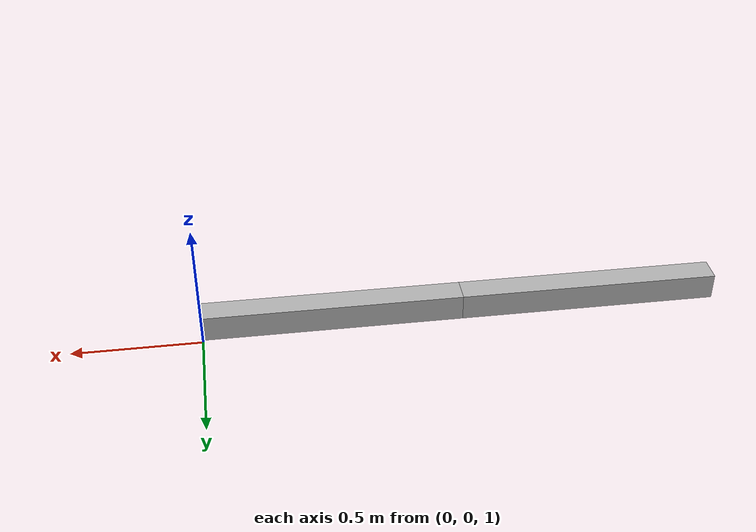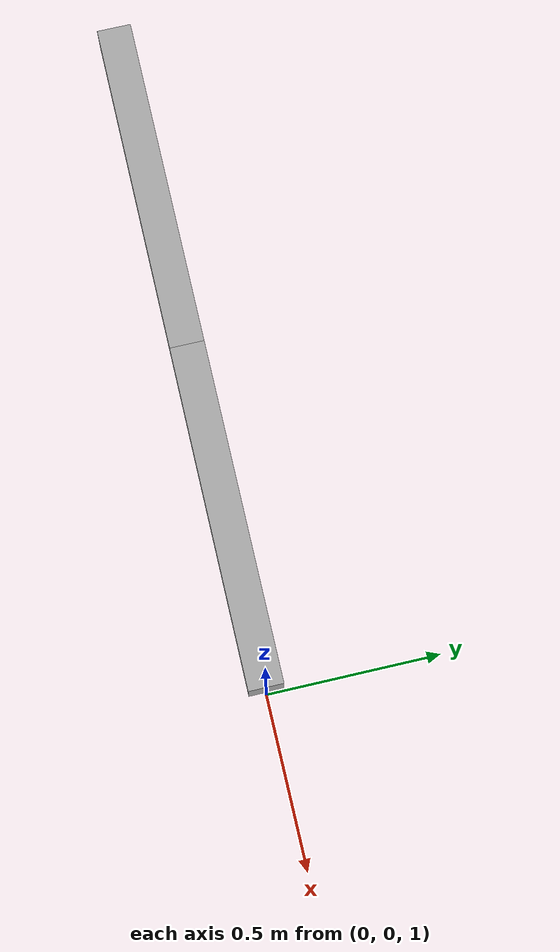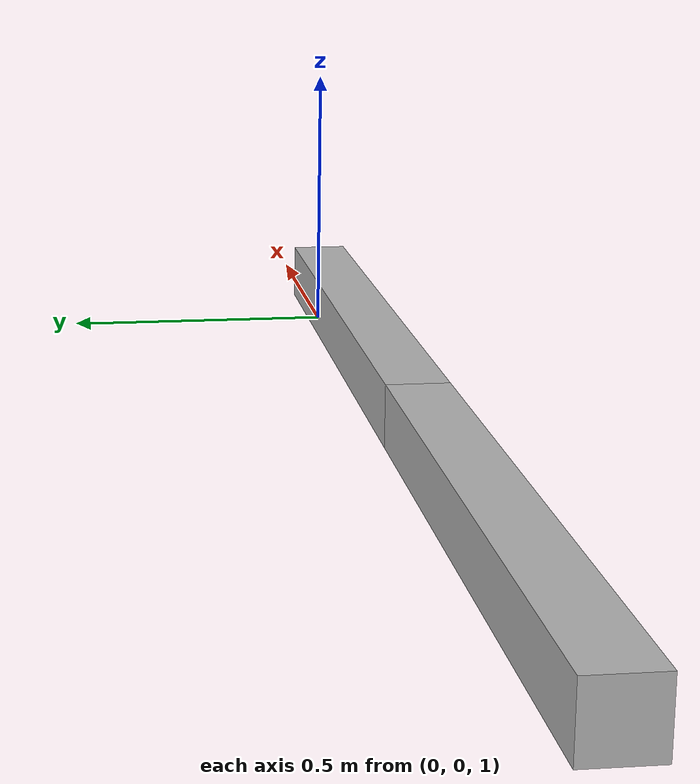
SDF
<sdf version='1.6'>
  <world name='default'>
    <physics name='default_physics' default='0' type='ode'>
      <ode>
        <solver>
          <type>quick</type>
          <iters>1000</iters>
          <precon_iters>0</precon_iters>
          <sor>1</sor>
          <use_dynamic_moi_rescaling>0</use_dynamic_moi_rescaling>
        </solver>
        <constraints>
          <cfm>0</cfm>
          <erp>0.2</erp>
          <contact_max_correcting_vel>100</contact_max_correcting_vel>
          <contact_surface_layer>0.01</contact_surface_layer>
        </constraints>
      </ode>
      <bullet>
        <solver>
          <type>sequential_impulse</type>
          <iters>1000</iters>
          <sor>1</sor>
        </solver>
        <constraints>
          <cfm>0</cfm>
          <erp>0.2</erp>
          <split_impulse>1</split_impulse>
          <split_impulse_penetration_threshold>-0.01</split_impulse_penetration_threshold>
          <contact_surface_layer>0</contact_surface_layer>
        </constraints>
      </bullet>
      <real_time_update_rate>0</real_time_update_rate>
      <max_step_size>0.001</max_step_size>
      <real_time_factor>1</real_time_factor>
    </physics>
    <light name='sun' type='directional'>
      <cast_shadows>1</cast_shadows>
      <pose frame=''>0 0 10 0 -0 0</pose>
      <diffuse>0.8 0.8 0.8 1</diffuse>
      <specular>0.1 0.1 0.1 1</specular>
      <attenuation>
        <range>1000</range>
        <constant>0.9</constant>
        <linear>0.01</linear>
        <quadratic>0.001</quadratic>
      </attenuation>
      <direction>-0.5 0.5 -1</direction>
    </light>

    <model name='model_2'>
      <pose frame=''>0 0 1.1 0 -0 3.1416</pose>
      <link name='link_1'>
        <pose frame=''>0 0 0 0 -0 0</pose>
        <inertial>
          <pose frame=''>0.5 0 0 0 -0 0</pose>
          <mass>1</mass>
          <inertia>
            <ixx>0.001</ixx>
            <ixy>0</ixy>
            <ixz>0</ixz>
            <iyy>0.01</iyy>
            <iyz>0</iyz>
            <izz>0.01</izz>
          </inertia>
        </inertial>
        <collision name='collision'>
          <pose frame=''>0.5 0 0 0 -0 0</pose>
          <geometry>
            <box>
              <size>1 0.1 0.1</size>
            </box>
          </geometry>
        </collision>
        <visual name='visual'>
          <pose frame=''>0.5 0 0 0 -0 0</pose>
          <geometry>
            <box>
              <size>1 0.1 0.1</size>
            </box>
          </geometry>
          <material>
            <script>
              <uri>__default__</uri>
              <name>__default__</name>
            </script>
          </material>
        </visual>
      </link>
      <link name='link_2'>
        <pose frame=''>1 0 0 0 -0 0</pose>
        <inertial>
          <pose frame=''>0.5 0 0 0 -0 0</pose>
          <mass>1</mass>
          <inertia>
            <ixx>0.001</ixx>
            <ixy>0</ixy>
            <ixz>0</ixz>
            <iyy>0.01</iyy>
            <iyz>0</iyz>
            <izz>0.01</izz>
          </inertia>
        </inertial>
        <collision name='collision'>
          <pose frame=''>0.5 0 0 0 -0 0</pose>
          <geometry>
            <box>
              <size>1 0.1 0.1</size>
            </box>
          </geometry>
        </collision>
        <visual name='visual'>
          <pose frame=''>0.5 0 0 0 -0 0</pose>
          <geometry>
            <box>
              <size>1 0.1 0.1</size>
            </box>
          </geometry>
          <material>
            <script>
              <uri>__default__</uri>
              <name>__default__</name>
            </script>
          </material>
        </visual>
      </link>
      <joint name='joint_01' type='revolute'>
        <parent>world</parent>
        <child>link_1</child>
        <axis>
          <xyz>1 1 0</xyz>
          <limit>
            <upper>0.7071</upper>
            <lower>-0.7071</lower>
          </limit>
          <use_parent_model_frame>1</use_parent_model_frame>
        </axis>
      </joint>
    </model>
    <gravity>0 0 0</gravity>
    <magnetic_field>6e-06 2.3e-05 -4.2e-05</magnetic_field>
    <atmosphere type='adiabatic'/>
    <scene>
      <ambient>0.4 0.4 0.4 1</ambient>
      <background>0.7 0.7 0.7 1</background>
      <shadows>1</shadows>
    </scene>
  </world>
</sdf>
